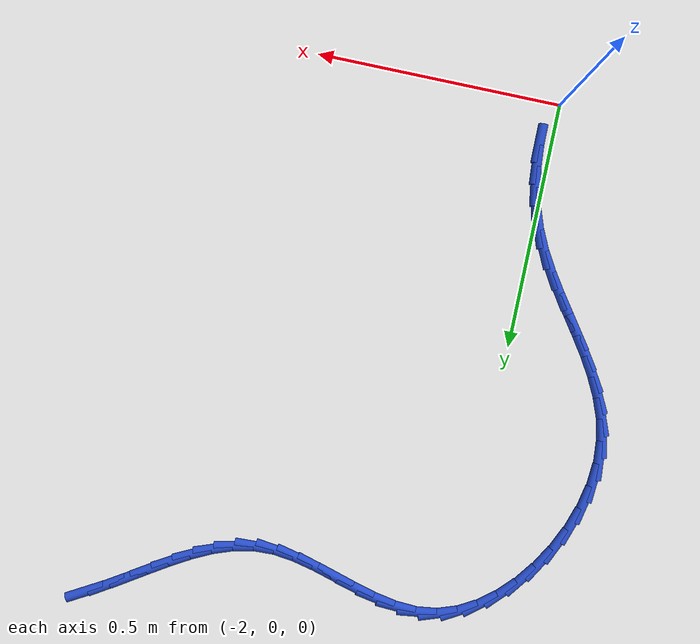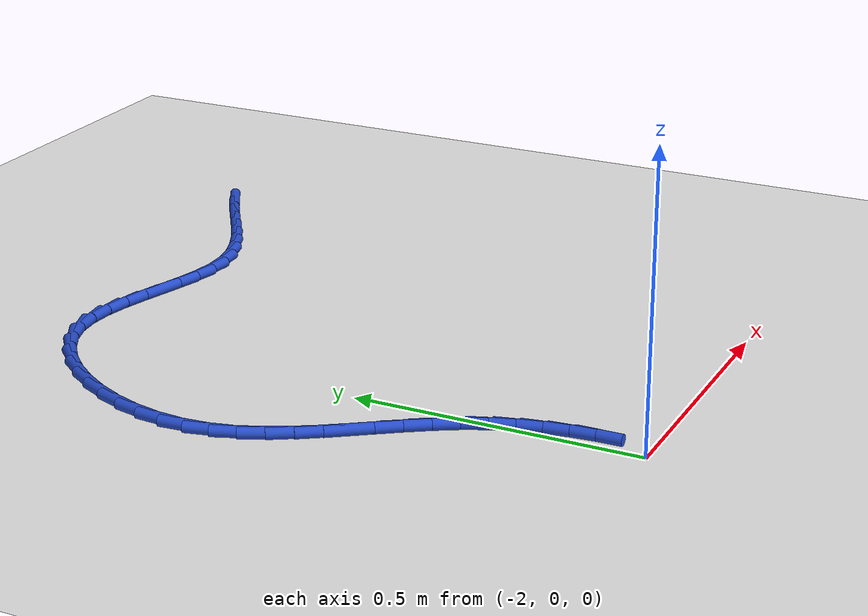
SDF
<sdf version="1.6">
 <world name="default">
  <model name="ground_plane">
   <static>1</static>
   <link name="link">
    <collision name="collision">
     <geometry><plane><normal>0 0 1</normal><size>100 100</size></plane></geometry>
     <surface><friction><ode><mu>100</mu><mu2>50</mu2></ode></friction></surface>
    </collision>
    <visual name="visual">
     <cast_shadows>0</cast_shadows>
     <geometry><plane><normal>0 0 1</normal><size>100 100</size></plane></geometry>
     <material>
      <script><uri>file://media/materials/scripts/gazebo.material</uri><name>Gazebo/WhiteGlow</name></script>
     </material>
    </visual>
   </link>
  </model>
  <model name="line">
   <link name="link_44">
    <pose>-1.266209252113946 1.159614818688168 0.01 0 1.57 0.5152087284668984</pose>
    <collision name="collision">
     <geometry><cylinder><radius>0.01</radius><length>0.08</length></cylinder></geometry>
    </collision>
    <visual name="visual">
     <material>
      <script><name>Gazebo/Blue</name><uri>file://media/materials/scripts/gazebo.material</uri></script>
     </material>
     <geometry><cylinder><radius>0.01</radius><length>0.08</length></cylinder></geometry>
    </visual>
   </link>
   <link name="link_45">
    <pose>-1.306366029375413 1.136877360426707 0.01 0 1.57 0.55682797016728</pose>
    <collision name="collision">
     <geometry><cylinder><radius>0.01</radius><length>0.08</length></cylinder></geometry>
    </collision>
    <visual name="visual">
     <material>
      <script><name>Gazebo/Blue</name><uri>file://media/materials/scripts/gazebo.material</uri></script>
     </material>
     <geometry><cylinder><radius>0.01</radius><length>0.08</length></cylinder></geometry>
    </visual>
   </link>
   <link name="link_46">
    <pose>-1.3457409360228434 1.112364927911284 0.01 0 1.57 0.5718817607722702</pose>
    <collision name="collision">
     <geometry><cylinder><radius>0.01</radius><length>0.08</length></cylinder></geometry>
    </collision>
    <visual name="visual">
     <material>
      <script><name>Gazebo/Blue</name><uri>file://media/materials/scripts/gazebo.material</uri></script>
     </material>
     <geometry><cylinder><radius>0.01</radius><length>0.08</length></cylinder></geometry>
    </visual>
   </link>
   <link name="link_47">
    <pose>-1.384608854774522 1.0873485005234345 0.01 0 1.57 0.5604966200062869</pose>
    <collision name="collision">
     <geometry><cylinder><radius>0.01</radius><length>0.08</length></cylinder></geometry>
    </collision>
    <visual name="visual">
     <material>
      <script><name>Gazebo/Blue</name><uri>file://media/materials/scripts/gazebo.material</uri></script>
     </material>
     <geometry><cylinder><radius>0.01</radius><length>0.08</length></cylinder></geometry>
    </visual>
   </link>
   <link name="link_48">
    <pose>-1.4232446683487323 1.0630990576446957 0.01 0 1.57 0.5212762469050544</pose>
    <collision name="collision">
     <geometry><cylinder><radius>0.01</radius><length>0.08</length></cylinder></geometry>
    </collision>
    <visual name="visual">
     <material>
      <script><name>Gazebo/Blue</name><uri>file://media/materials/scripts/gazebo.material</uri></script>
     </material>
     <geometry><cylinder><radius>0.01</radius><length>0.08</length></cylinder></geometry>
    </visual>
   </link>
   <link name="link_49">
    <pose>-1.4619232594637588 1.0408875786566039 0.01 0 1.57 0.4513547201303458</pose>
    <collision name="collision">
     <geometry><cylinder><radius>0.01</radius><length>0.08</length></cylinder></geometry>
    </collision>
    <visual name="visual">
     <material>
      <script><name>Gazebo/Blue</name><uri>file://media/materials/scripts/gazebo.material</uri></script>
     </material>
     <geometry><cylinder><radius>0.01</radius><length>0.08</length></cylinder></geometry>
    </visual>
   </link>
   <link name="link_50">
    <pose>-1.5009195108378854 1.021985042940695 0.01 0 1.57 0.34713446402082365</pose>
    <collision name="collision">
     <geometry><cylinder><radius>0.01</radius><length>0.08</length></cylinder></geometry>
    </collision>
    <visual name="visual">
     <material>
      <script><name>Gazebo/Blue</name><uri>file://media/materials/scripts/gazebo.material</uri></script>
     </material>
     <geometry><cylinder><radius>0.01</radius><length>0.08</length></cylinder></geometry>
    </visual>
   </link>
   <link name="link_51">
    <pose>-1.5405083051893957 1.0076624298785057 0.01 0 1.57 0.20642169532118823</pose>
    <collision name="collision">
     <geometry><cylinder><radius>0.01</radius><length>0.08</length></cylinder></geometry>
    </collision>
    <visual name="visual">
     <material>
      <script><name>Gazebo/Blue</name><uri>file://media/materials/scripts/gazebo.material</uri></script>
     </material>
     <geometry><cylinder><radius>0.01</radius><length>0.08</length></cylinder></geometry>
    </visual>
   </link>
   <link name="link_52">
    <pose>-1.5809645252365747 0.9991907188515722 0.01 0 1.57 0.0340555826025112</pose>
    <collision name="collision">
     <geometry><cylinder><radius>0.01</radius><length>0.08</length></cylinder></geometry>
    </collision>
    <visual name="visual">
     <material>
      <script><name>Gazebo/Blue</name><uri>file://media/materials/scripts/gazebo.material</uri></script>
     </material>
     <geometry><cylinder><radius>0.01</radius><length>0.08</length></cylinder></geometry>
    </visual>
   </link>
   <link name="link_53">
    <pose>-1.6225514629047713 0.9977739036856969 0.01 0 1.57 -0.12243299148436901</pose>
    <collision name="collision">
     <geometry><cylinder><radius>0.01</radius><length>0.08</length></cylinder></geometry>
    </collision>
    <visual name="visual">
     <material>
      <script><name>Gazebo/Blue</name><uri>file://media/materials/scripts/gazebo.material</uri></script>
     </material>
     <geometry><cylinder><radius>0.01</radius><length>0.08</length></cylinder></geometry>
    </visual>
   </link>
   <link name="link_54">
    <pose>-1.6652577825273638 1.0030288493560866 0.01 0 1.57 -0.22425906854549962</pose>
    <collision name="collision">
     <geometry><cylinder><radius>0.01</radius><length>0.08</length></cylinder></geometry>
    </collision>
    <visual name="visual">
     <material>
      <script><name>Gazebo/Blue</name><uri>file://media/materials/scripts/gazebo.material</uri></script>
     </material>
     <geometry><cylinder><radius>0.01</radius><length>0.08</length></cylinder></geometry>
    </visual>
   </link>
   <link name="link_55">
    <pose>-1.708792978866112 1.012959042960855 0.01 0 1.57 -0.27720434813730616</pose>
    <collision name="collision">
     <geometry><cylinder><radius>0.01</radius><length>0.08</length></cylinder></geometry>
    </collision>
    <visual name="visual">
     <material>
      <script><name>Gazebo/Blue</name><uri>file://media/materials/scripts/gazebo.material</uri></script>
     </material>
     <geometry><cylinder><radius>0.01</radius><length>0.08</length></cylinder></geometry>
    </visual>
   </link>
   <link name="link_56">
    <pose>-1.752854047417289 1.0254957357942611 0.01 0 1.57 -0.28708524317480616</pose>
    <collision name="collision">
     <geometry><cylinder><radius>0.01</radius><length>0.08</length></cylinder></geometry>
    </collision>
    <visual name="visual">
     <material>
      <script><name>Gazebo/Blue</name><uri>file://media/materials/scripts/gazebo.material</uri></script>
     </material>
     <geometry><cylinder><radius>0.01</radius><length>0.08</length></cylinder></geometry>
    </visual>
   </link>
   <link name="link_57">
    <pose>-1.7971379836771666 1.0385701791505635 0.01 0 1.57 -0.2554369536197095</pose>
    <collision name="collision">
     <geometry><cylinder><radius>0.01</radius><length>0.08</length></cylinder></geometry>
    </collision>
    <visual name="visual">
     <material>
      <script><name>Gazebo/Blue</name><uri>file://media/materials/scripts/gazebo.material</uri></script>
     </material>
     <geometry><cylinder><radius>0.01</radius><length>0.08</length></cylinder></geometry>
    </visual>
   </link>
   <link name="link_58">
    <pose>-1.8413417831420185 1.0501136243240223 0.01 0 1.57 -0.17933004626102003</pose>
    <collision name="collision">
     <geometry><cylinder><radius>0.01</radius><length>0.08</length></cylinder></geometry>
    </collision>
    <visual name="visual">
     <material>
      <script><name>Gazebo/Blue</name><uri>file://media/materials/scripts/gazebo.material</uri></script>
     </material>
     <geometry><cylinder><radius>0.01</radius><length>0.08</length></cylinder></geometry>
    </visual>
   </link>
   <link name="link_59">
    <pose>-1.885162441308115 1.0580573226088952 0.01 0 1.57 -0.05269785256373374</pose>
    <collision name="collision">
     <geometry><cylinder><radius>0.01</radius><length>0.08</length></cylinder></geometry>
    </collision>
    <visual name="visual">
     <material>
      <script><name>Gazebo/Blue</name><uri>file://media/materials/scripts/gazebo.material</uri></script>
     </material>
     <geometry><cylinder><radius>0.01</radius><length>0.08</length></cylinder></geometry>
    </visual>
   </link>
   <link name="link_60">
    <pose>-1.9282969536717292 1.060332525299442 0.01 0 1.57 0.1286685791889803</pose>
    <collision name="collision">
     <geometry><cylinder><radius>0.01</radius><length>0.08</length></cylinder></geometry>
    </collision>
    <visual name="visual">
     <material>
      <script><name>Gazebo/Blue</name><uri>file://media/materials/scripts/gazebo.material</uri></script>
     </material>
     <geometry><cylinder><radius>0.01</radius><length>0.08</length></cylinder></geometry>
    </visual>
   </link>
   <link name="link_61">
    <pose>-1.9704415675990403 1.0548797129073708 0.01 0 1.57 0.3357606392606404</pose>
    <collision name="collision">
     <geometry><cylinder><radius>0.01</radius><length>0.08</length></cylinder></geometry>
    </collision>
    <visual name="visual">
     <material>
      <script><name>Gazebo/Blue</name><uri>file://media/materials/scripts/gazebo.material</uri></script>
     </material>
     <geometry><cylinder><radius>0.01</radius><length>0.08</length></cylinder></geometry>
    </visual>
   </link>
   <link name="link_62">
    <pose>-2.011210409565103 1.0406524404973785 0.01 0 1.57 0.5178431912625541</pose>
    <collision name="collision">
     <geometry><cylinder><radius>0.01</radius><length>0.08</length></cylinder></geometry>
    </collision>
    <visual name="visual">
     <material>
      <script><name>Gazebo/Blue</name><uri>file://media/materials/scripts/gazebo.material</uri></script>
     </material>
     <geometry><cylinder><radius>0.01</radius><length>0.08</length></cylinder></geometry>
    </visual>
   </link>
   <link name="link_63">
    <pose>-2.0500624459140013 1.018518377535318 0.01 0 1.57 0.6723725663266519</pose>
    <collision name="collision">
     <geometry><cylinder><radius>0.01</radius><length>0.08</length></cylinder></geometry>
    </collision>
    <visual name="visual">
     <material>
      <script><name>Gazebo/Blue</name><uri>file://media/materials/scripts/gazebo.material</uri></script>
     </material>
     <geometry><cylinder><radius>0.01</radius><length>0.08</length></cylinder></geometry>
    </visual>
   </link>
   <link name="link_64">
    <pose>-2.0864394059952667 0.9895578356090138 0.01 0 1.57 0.8054261930871462</pose>
    <collision name="collision">
     <geometry><cylinder><radius>0.01</radius><length>0.08</length></cylinder></geometry>
    </collision>
    <visual name="visual">
     <material>
      <script><name>Gazebo/Blue</name><uri>file://media/materials/scripts/gazebo.material</uri></script>
     </material>
     <geometry><cylinder><radius>0.01</radius><length>0.08</length></cylinder></geometry>
    </visual>
   </link>
   <link name="link_65">
    <pose>-2.119783019158436 0.9548511263062922 0.01 0 1.57 0.9236871256743018</pose>
    <collision name="collision">
     <geometry><cylinder><radius>0.01</radius><length>0.08</length></cylinder></geometry>
    </collision>
    <visual name="visual">
     <material>
      <script><name>Gazebo/Blue</name><uri>file://media/materials/scripts/gazebo.material</uri></script>
     </material>
     <geometry><cylinder><radius>0.01</radius><length>0.08</length></cylinder></geometry>
    </visual>
   </link>
   <link name="link_66">
    <pose>-2.149535014753044 0.915478561214977 0.01 0 1.57 1.0333390958927844</pose>
    <collision name="collision">
     <geometry><cylinder><radius>0.01</radius><length>0.08</length></cylinder></geometry>
    </collision>
    <visual name="visual">
     <material>
      <script><name>Gazebo/Blue</name><uri>file://media/materials/scripts/gazebo.material</uri></script>
     </material>
     <geometry><cylinder><radius>0.01</radius><length>0.08</length></cylinder></geometry>
    </visual>
   </link>
   <link name="link_67">
    <pose>-2.175137122128622 0.8725204519228932 0.01 0 1.57 1.1400060004814445</pose>
    <collision name="collision">
     <geometry><cylinder><radius>0.01</radius><length>0.08</length></cylinder></geometry>
    </collision>
    <visual name="visual">
     <material>
      <script><name>Gazebo/Blue</name><uri>file://media/materials/scripts/gazebo.material</uri></script>
     </material>
     <geometry><cylinder><radius>0.01</radius><length>0.08</length></cylinder></geometry>
    </visual>
   </link>
   <link name="link_68">
    <pose>-2.196031070634708 0.8270571100178661 0.01 0 1.57 1.2490822807322248</pose>
    <collision name="collision">
     <geometry><cylinder><radius>0.01</radius><length>0.08</length></cylinder></geometry>
    </collision>
    <visual name="visual">
     <material>
      <script><name>Gazebo/Blue</name><uri>file://media/materials/scripts/gazebo.material</uri></script>
     </material>
     <geometry><cylinder><radius>0.01</radius><length>0.08</length></cylinder></geometry>
    </visual>
   </link>
   <link name="link_69">
    <pose>-2.2116585896208325 0.7801688470877205 0.01 0 1.57 1.366159188738537</pose>
    <collision name="collision">
     <geometry><cylinder><radius>0.01</radius><length>0.08</length></cylinder></geometry>
    </collision>
    <visual name="visual">
     <material>
      <script><name>Gazebo/Blue</name><uri>file://media/materials/scripts/gazebo.material</uri></script>
     </material>
     <geometry><cylinder><radius>0.01</radius><length>0.08</length></cylinder></geometry>
    </visual>
   </link>
   <link name="link_70">
    <pose>-2.2214614084365323 0.7329359747202812 0.01 0 1.57 1.497378927149011</pose>
    <collision name="collision">
     <geometry><cylinder><radius>0.01</radius><length>0.08</length></cylinder></geometry>
    </collision>
    <visual name="visual">
     <material>
      <script><name>Gazebo/Blue</name><uri>file://media/materials/scripts/gazebo.material</uri></script>
     </material>
     <geometry><cylinder><radius>0.01</radius><length>0.08</length></cylinder></geometry>
    </visual>
   </link>
   <link name="link_71">
    <pose>-2.2248812564313414 0.686438804503373 0.01 0 1.57 -1.4929736119352088</pose>
    <collision name="collision">
     <geometry><cylinder><radius>0.01</radius><length>0.08</length></cylinder></geometry>
    </collision>
    <visual name="visual">
     <material>
      <script><name>Gazebo/Blue</name><uri>file://media/materials/scripts/gazebo.material</uri></script>
     </material>
     <geometry><cylinder><radius>0.01</radius><length>0.08</length></cylinder></geometry>
    </visual>
   </link>
   <link name="link_72">
    <pose>-2.2213947082353984 0.6417281214554491 0.01 0 1.57 -1.3377265610313767</pose>
    <collision name="collision">
     <geometry><cylinder><radius>0.01</radius><length>0.08</length></cylinder></geometry>
    </collision>
    <visual name="visual">
     <material>
      <script><name>Gazebo/Blue</name><uri>file://media/materials/scripts/gazebo.material</uri></script>
     </material>
     <geometry><cylinder><radius>0.01</radius><length>0.08</length></cylinder></geometry>
    </visual>
   </link>
   <link name="link_73">
    <pose>-2.2112911445245977 0.5991659695752664 0.01 0 1.57 -1.204893047439384</pose>
    <collision name="collision">
     <geometry><cylinder><radius>0.01</radius><length>0.08</length></cylinder></geometry>
    </collision>
    <visual name="visual">
     <material>
      <script><name>Gazebo/Blue</name><uri>file://media/materials/scripts/gazebo.material</uri></script>
     </material>
     <geometry><cylinder><radius>0.01</radius><length>0.08</length></cylinder></geometry>
    </visual>
   </link>
   <link name="link_74">
    <pose>-2.195679116268734 0.5584202590193492 0.01 0 1.57 -1.1004555873983626</pose>
    <collision name="collision">
     <geometry><cylinder><radius>0.01</radius><length>0.08</length></cylinder></geometry>
    </collision>
    <visual name="visual">
     <material>
      <script><name>Gazebo/Blue</name><uri>file://media/materials/scripts/gazebo.material</uri></script>
     </material>
     <geometry><cylinder><radius>0.01</radius><length>0.08</length></cylinder></geometry>
    </visual>
   </link>
   <link name="link_75">
    <pose>-2.1757032925921123 0.5191282947897776 0.01 0 1.57 -1.0251118448766472</pose>
    <collision name="collision">
     <geometry><cylinder><radius>0.01</radius><length>0.08</length></cylinder></geometry>
    </collision>
    <visual name="visual">
     <material>
      <script><name>Gazebo/Blue</name><uri>file://media/materials/scripts/gazebo.material</uri></script>
     </material>
     <geometry><cylinder><radius>0.01</radius><length>0.08</length></cylinder></geometry>
    </visual>
   </link>
   <link name="link_76">
    <pose>-2.1525083426190346 0.4809273818886296 0.01 0 1.57 -0.9774972158469567</pose>
    <collision name="collision">
     <geometry><cylinder><radius>0.01</radius><length>0.08</length></cylinder></geometry>
    </collision>
    <visual name="visual">
     <material>
      <script><name>Gazebo/Blue</name><uri>file://media/materials/scripts/gazebo.material</uri></script>
     </material>
     <geometry><cylinder><radius>0.01</radius><length>0.08</length></cylinder></geometry>
    </visual>
   </link>
   <link name="link_77">
    <pose>-2.1272389354738057 0.443454825317984 0.01 0 1.57 -0.9560237953165027</pose>
    <collision name="collision">
     <geometry><cylinder><radius>0.01</radius><length>0.08</length></cylinder></geometry>
    </collision>
    <visual name="visual">
     <material>
      <script><name>Gazebo/Blue</name><uri>file://media/materials/scripts/gazebo.material</uri></script>
     </material>
     <geometry><cylinder><radius>0.01</radius><length>0.08</length></cylinder></geometry>
    </visual>
   </link>
   <link name="link_78">
    <pose>-2.1010397402807293 0.4063479300799201 0.01 0 1.57 -0.9598612239111127</pose>
    <collision name="collision">
     <geometry><cylinder><radius>0.01</radius><length>0.08</length></cylinder></geometry>
    </collision>
    <visual name="visual">
     <material>
      <script><name>Gazebo/Blue</name><uri>file://media/materials/scripts/gazebo.material</uri></script>
     </material>
     <geometry><cylinder><radius>0.01</radius><length>0.08</length></cylinder></geometry>
    </visual>
   </link>
   <link name="link_79">
    <pose>-2.0750554261641083 0.36924400117651607 0.01 0 1.57 -0.9893082322093759</pose>
    <collision name="collision">
     <geometry><cylinder><radius>0.01</radius><length>0.08</length></cylinder></geometry>
    </collision>
    <visual name="visual">
     <material>
      <script><name>Gazebo/Blue</name><uri>file://media/materials/scripts/gazebo.material</uri></script>
     </material>
     <geometry><cylinder><radius>0.01</radius><length>0.08</length></cylinder></geometry>
    </visual>
   </link>
   <link name="link_80">
    <pose>-2.050430662248247 0.3317803436098515 0.01 0 1.57 -1.045749277015531</pose>
    <collision name="collision">
     <geometry><cylinder><radius>0.01</radius><length>0.08</length></cylinder></geometry>
    </collision>
    <visual name="visual">
     <material>
      <script><name>Gazebo/Blue</name><uri>file://media/materials/scripts/gazebo.material</uri></script>
     </material>
     <geometry><cylinder><radius>0.01</radius><length>0.08</length></cylinder></geometry>
    </visual>
   </link>
   <link name="link_81">
    <pose>-2.0283101176574485 0.2935942623820047 0.01 0 1.57 -1.1308162253469491</pose>
    <collision name="collision">
     <geometry><cylinder><radius>0.01</radius><length>0.08</length></cylinder></geometry>
    </collision>
    <visual name="visual">
     <material>
      <script><name>Gazebo/Blue</name><uri>file://media/materials/scripts/gazebo.material</uri></script>
     </material>
     <geometry><cylinder><radius>0.01</radius><length>0.08</length></cylinder></geometry>
    </visual>
   </link>
   <link name="link_82">
    <pose>-2.0098251655647847 0.2543277559475561 0.01 0 1.57 -1.2315053098989552</pose>
    <collision name="collision">
     <geometry><cylinder><radius>0.01</radius><length>0.08</length></cylinder></geometry>
    </collision>
    <visual name="visual">
     <material>
      <script><name>Gazebo/Blue</name><uri>file://media/materials/scripts/gazebo.material</uri></script>
     </material>
     <geometry><cylinder><radius>0.01</radius><length>0.08</length></cylinder></geometry>
    </visual>
   </link>
   <link name="link_83">
    <pose>-1.9955306231366494 0.21382634623863728 0.01 0 1.57 -1.327370315972428</pose>
    <collision name="collision">
     <geometry><cylinder><radius>0.01</radius><length>0.08</length></cylinder></geometry>
    </collision>
    <visual name="visual">
     <material>
      <script><name>Gazebo/Blue</name><uri>file://media/materials/scripts/gazebo.material</uri></script>
     </material>
     <geometry><cylinder><radius>0.01</radius><length>0.08</length></cylinder></geometry>
    </visual>
   </link>
   <link name="link_84">
    <pose>-1.985195863510464 0.17221281584956116 0.01 0 1.57 -1.4156083627906344</pose>
    <collision name="collision">
     <geometry><cylinder><radius>0.01</radius><length>0.08</length></cylinder></geometry>
    </collision>
    <visual name="visual">
     <material>
      <script><name>Gazebo/Blue</name><uri>file://media/materials/scripts/gazebo.material</uri></script>
     </material>
     <geometry><cylinder><radius>0.01</radius><length>0.08</length></cylinder></geometry>
    </visual>
   </link>
   <link name="link_85">
    <pose>-1.9785339303656495 0.12962983159585945 0.01 0 1.57 -1.4954707841314256</pose>
    <collision name="collision">
     <geometry><cylinder><radius>0.01</radius><length>0.08</length></cylinder></geometry>
    </collision>
    <visual name="visual">
     <material>
      <script><name>Gazebo/Blue</name><uri>file://media/materials/scripts/gazebo.material</uri></script>
     </material>
     <geometry><cylinder><radius>0.01</radius><length>0.08</length></cylinder></geometry>
    </visual>
   </link>
   <link name="link_86">
    <pose>-1.9752578673816266 0.08622006029306234 0.01 0 1.57 -1.5667788045362327</pose>
    <collision name="collision">
     <geometry><cylinder><radius>0.01</radius><length>0.08</length></cylinder></geometry>
    </collision>
    <visual name="visual">
     <material>
      <script><name>Gazebo/Blue</name><uri>file://media/materials/scripts/gazebo.material</uri></script>
     </material>
     <geometry><cylinder><radius>0.01</radius><length>0.08</length></cylinder></geometry>
    </visual>
   </link>
  </model>
 </world>
</sdf>
